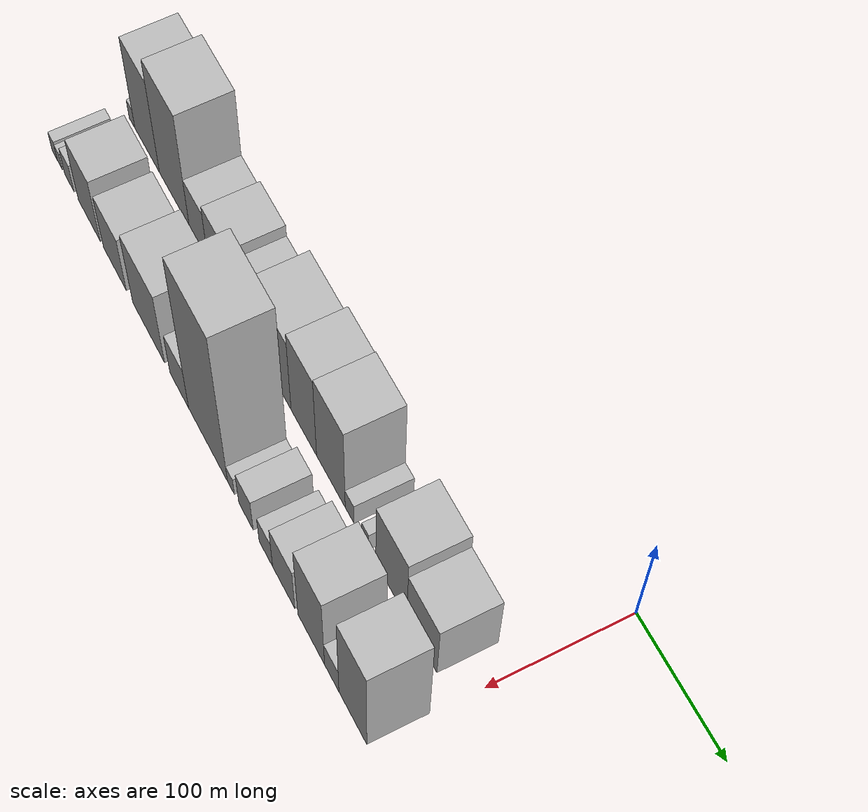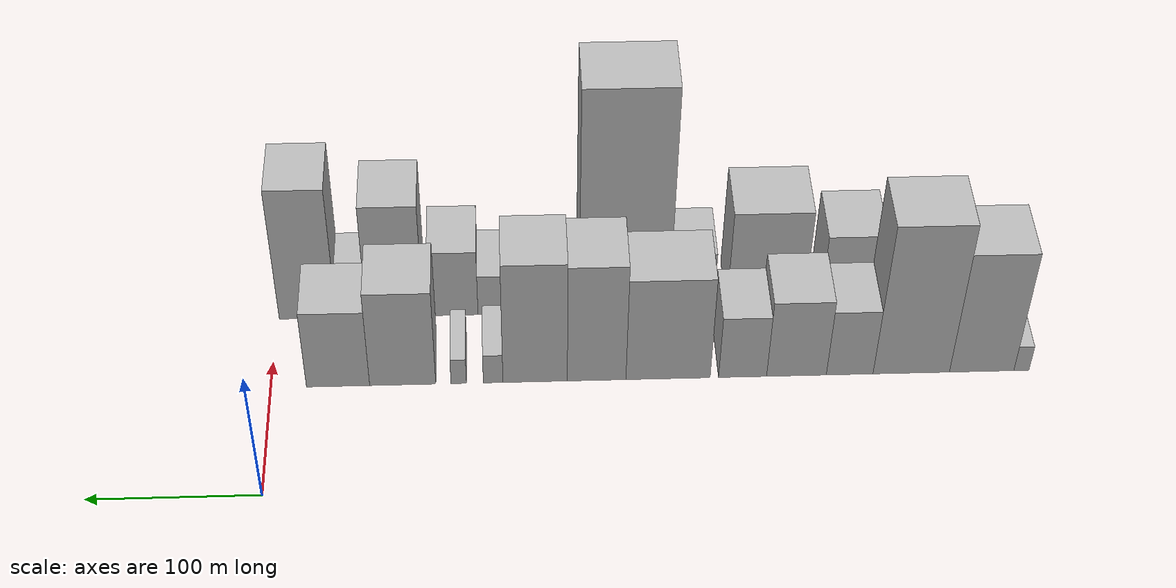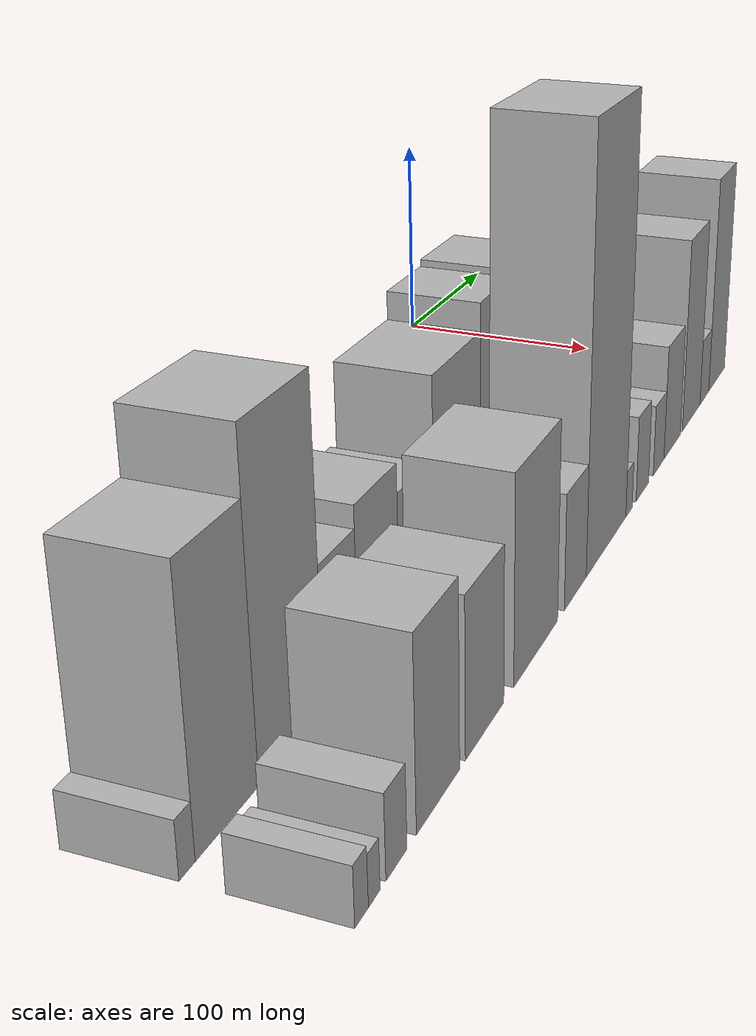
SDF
<sdf version="1.6">
 <world name="default">
  <model name="building_1">
   <static>1</static>
   <pose>100.0000 -445.4748 0 0.000000 0.000000 0.000000</pose>
   <link name="link">
    <pose>0 0 10.50 0 0 0</pose>
    <collision name="collision"><geometry><box><size>40.0000 9.0504 21.0000</size></box></geometry></collision>
    <visual name="visual">
     <cast_shadows>0</cast_shadows>
     <geometry><box><size>40.0000 9.0504 21.0000</size></box></geometry>
     <material>
      <script>
       <uri>model://HANNAS_wall/materials/scripts</uri>
       <uri>model://HANNAS_wall/materials/textures</uri>
       <name>vrc/HANNAS_wall</name>
      </script>
     </material>
    </visual>
   </link>
  </model>
  <model name="building_2">
   <static>1</static>
   <pose>100.0000 -421.6555 0 0.000000 0.000000 0.000000</pose>
   <link name="link">
    <pose>0 0 49.50 0 0 0</pose>
    <collision name="collision"><geometry><box><size>40.0000 38.5883 99.0000</size></box></geometry></collision>
    <visual name="visual">
     <cast_shadows>0</cast_shadows>
     <geometry><box><size>40.0000 38.5883 99.0000</size></box></geometry>
     <material>
      <script>
       <uri>model://HANNAS_wall/materials/scripts</uri>
       <uri>model://HANNAS_wall/materials/textures</uri>
       <name>vrc/HANNAS_wall</name>
      </script>
     </material>
    </visual>
   </link>
  </model>
  <model name="building_3">
   <static>1</static>
   <pose>100.0000 -379.5401 0 0.000000 0.000000 0.000000</pose>
   <link name="link">
    <pose>0 0 61.50 0 0 0</pose>
    <collision name="collision"><geometry><box><size>40.0000 45.6425 123.0000</size></box></geometry></collision>
    <visual name="visual">
     <cast_shadows>0</cast_shadows>
     <geometry><box><size>40.0000 45.6425 123.0000</size></box></geometry>
     <material>
      <script>
       <uri>model://HANNAS_wall/materials/scripts</uri>
       <uri>model://HANNAS_wall/materials/textures</uri>
       <name>vrc/HANNAS_wall</name>
      </script>
     </material>
    </visual>
   </link>
  </model>
  <model name="building_4">
   <static>1</static>
   <pose>100.0000 -342.8014 0 0.000000 0.000000 0.000000</pose>
   <link name="link">
    <pose>0 0 27.00 0 0 0</pose>
    <collision name="collision"><geometry><box><size>40.0000 27.8349 54.0000</size></box></geometry></collision>
    <visual name="visual">
     <cast_shadows>0</cast_shadows>
     <geometry><box><size>40.0000 27.8349 54.0000</size></box></geometry>
     <material>
      <script>
       <uri>model://HANNAS_wall/materials/scripts</uri>
       <uri>model://HANNAS_wall/materials/textures</uri>
       <name>vrc/HANNAS_wall</name>
      </script>
     </material>
    </visual>
   </link>
  </model>
  <model name="building_5">
   <static>1</static>
   <pose>100.0000 -311.0895 0 0.000000 0.000000 0.000000</pose>
   <link name="link">
    <pose>0 0 31.50 0 0 0</pose>
    <collision name="collision"><geometry><box><size>40.0000 35.5888 63.0000</size></box></geometry></collision>
    <visual name="visual">
     <cast_shadows>0</cast_shadows>
     <geometry><box><size>40.0000 35.5888 63.0000</size></box></geometry>
     <material>
      <script>
       <uri>model://HANNAS_wall/materials/scripts</uri>
       <uri>model://HANNAS_wall/materials/textures</uri>
       <name>vrc/HANNAS_wall</name>
      </script>
     </material>
    </visual>
   </link>
  </model>
  <model name="building_6">
   <static>1</static>
   <pose>100.0000 -278.9993 0 0.000000 0.000000 0.000000</pose>
   <link name="link">
    <pose>0 0 25.50 0 0 0</pose>
    <collision name="collision"><geometry><box><size>40.0000 28.5917 51.0000</size></box></geometry></collision>
    <visual name="visual">
     <cast_shadows>0</cast_shadows>
     <geometry><box><size>40.0000 28.5917 51.0000</size></box></geometry>
     <material>
      <script>
       <uri>model://HANNAS_wall/materials/scripts</uri>
       <uri>model://HANNAS_wall/materials/textures</uri>
       <name>vrc/HANNAS_wall</name>
      </script>
     </material>
    </visual>
   </link>
  </model>
  <model name="building_7">
   <static>1</static>
   <pose>100.0000 -234.6841 0 0.000000 0.000000 0.000000</pose>
   <link name="link">
    <pose>0 0 42.00 0 0 0</pose>
    <collision name="collision"><geometry><box><size>40.0000 50.0388 84.0000</size></box></geometry></collision>
    <visual name="visual">
     <cast_shadows>0</cast_shadows>
     <geometry><box><size>40.0000 50.0388 84.0000</size></box></geometry>
     <material>
      <script>
       <uri>model://HANNAS_wall/materials/scripts</uri>
       <uri>model://HANNAS_wall/materials/textures</uri>
       <name>vrc/HANNAS_wall</name>
      </script>
     </material>
    </visual>
   </link>
  </model>
  <model name="building_8">
   <static>1</static>
   <pose>100.0000 -192.2802 0 0.000000 0.000000 0.000000</pose>
   <link name="link">
    <pose>0 0 48.00 0 0 0</pose>
    <collision name="collision"><geometry><box><size>40.0000 34.7690 96.0000</size></box></geometry></collision>
    <visual name="visual">
     <cast_shadows>0</cast_shadows>
     <geometry><box><size>40.0000 34.7690 96.0000</size></box></geometry>
     <material>
      <script>
       <uri>model://HANNAS_wall/materials/scripts</uri>
       <uri>model://HANNAS_wall/materials/textures</uri>
       <name>vrc/HANNAS_wall</name>
      </script>
     </material>
    </visual>
   </link>
  </model>
  <model name="building_9">
   <static>1</static>
   <pose>100.0000 -155.8249 0 0.000000 0.000000 0.000000</pose>
   <link name="link">
    <pose>0 0 49.50 0 0 0</pose>
    <collision name="collision"><geometry><box><size>40.0000 38.1416 99.0000</size></box></geometry></collision>
    <visual name="visual">
     <cast_shadows>0</cast_shadows>
     <geometry><box><size>40.0000 38.1416 99.0000</size></box></geometry>
     <material>
      <script>
       <uri>model://HANNAS_wall/materials/scripts</uri>
       <uri>model://HANNAS_wall/materials/textures</uri>
       <name>vrc/HANNAS_wall</name>
      </script>
     </material>
    </visual>
   </link>
  </model>
  <model name="building_10">
   <static>1</static>
   <pose>100.0000 -130.9674 0 0.000000 0.000000 0.000000</pose>
   <link name="link">
    <pose>0 0 12.00 0 0 0</pose>
    <collision name="collision"><geometry><box><size>40.0000 11.5733 24.0000</size></box></geometry></collision>
    <visual name="visual">
     <cast_shadows>0</cast_shadows>
     <geometry><box><size>40.0000 11.5733 24.0000</size></box></geometry>
     <material>
      <script>
       <uri>model://HANNAS_wall/materials/scripts</uri>
       <uri>model://HANNAS_wall/materials/textures</uri>
       <name>vrc/HANNAS_wall</name>
      </script>
     </material>
    </visual>
   </link>
  </model>
  <model name="building_11">
   <static>1</static>
   <pose>100.0000 -110.6185 0 0.000000 0.000000 0.000000</pose>
   <link name="link">
    <pose>0 0 10.50 0 0 0</pose>
    <collision name="collision"><geometry><box><size>40.0000 9.1246 21.0000</size></box></geometry></collision>
    <visual name="visual">
     <cast_shadows>0</cast_shadows>
     <geometry><box><size>40.0000 9.1246 21.0000</size></box></geometry>
     <material>
      <script>
       <uri>model://HANNAS_wall/materials/scripts</uri>
       <uri>model://HANNAS_wall/materials/textures</uri>
       <name>vrc/HANNAS_wall</name>
      </script>
     </material>
    </visual>
   </link>
  </model>
  <model name="building_12">
   <static>1</static>
   <pose>100.0000 -77.5080 0 0.000000 0.000000 0.000000</pose>
   <link name="link">
    <pose>0 0 39.00 0 0 0</pose>
    <collision name="collision"><geometry><box><size>40.0000 39.0963 78.0000</size></box></geometry></collision>
    <visual name="visual">
     <cast_shadows>0</cast_shadows>
     <geometry><box><size>40.0000 39.0963 78.0000</size></box></geometry>
     <material>
      <script>
       <uri>model://HANNAS_wall/materials/scripts</uri>
       <uri>model://HANNAS_wall/materials/textures</uri>
       <name>vrc/HANNAS_wall</name>
      </script>
     </material>
    </visual>
   </link>
  </model>
  <model name="building_13">
   <static>1</static>
   <pose>100.0000 -39.3229 0 0.000000 0.000000 0.000000</pose>
   <link name="link">
    <pose>0 0 31.50 0 0 0</pose>
    <collision name="collision"><geometry><box><size>40.0000 37.2738 63.0000</size></box></geometry></collision>
    <visual name="visual">
     <cast_shadows>0</cast_shadows>
     <geometry><box><size>40.0000 37.2738 63.0000</size></box></geometry>
     <material>
      <script>
       <uri>model://HANNAS_wall/materials/scripts</uri>
       <uri>model://HANNAS_wall/materials/textures</uri>
       <name>vrc/HANNAS_wall</name>
      </script>
     </material>
    </visual>
   </link>
  </model>
  <model name="building_27">
   <static>1</static>
   <pose>155.0000 -445.5426 0 0.000000 0.000000 0.000000</pose>
   <link name="link">
    <pose>0 0 10.50 0 0 0</pose>
    <collision name="collision"><geometry><box><size>40.0000 8.9148 21.0000</size></box></geometry></collision>
    <visual name="visual">
     <cast_shadows>0</cast_shadows>
     <geometry><box><size>40.0000 8.9148 21.0000</size></box></geometry>
     <material>
      <script>
       <uri>model://HANNAS_wall/materials/scripts</uri>
       <uri>model://HANNAS_wall/materials/textures</uri>
       <name>vrc/HANNAS_wall</name>
      </script>
     </material>
    </visual>
   </link>
  </model>
  <model name="building_28">
   <static>1</static>
   <pose>155.0000 -437.1191 0 0.000000 0.000000 0.000000</pose>
   <link name="link">
    <pose>0 0 9.00 0 0 0</pose>
    <collision name="collision"><geometry><box><size>40.0000 7.9323 18.0000</size></box></geometry></collision>
    <visual name="visual">
     <cast_shadows>0</cast_shadows>
     <geometry><box><size>40.0000 7.9323 18.0000</size></box></geometry>
     <material>
      <script>
       <uri>model://HANNAS_wall/materials/scripts</uri>
       <uri>model://HANNAS_wall/materials/textures</uri>
       <name>vrc/HANNAS_wall</name>
      </script>
     </material>
    </visual>
   </link>
  </model>
  <model name="building_29">
   <static>1</static>
   <pose>155.0000 -421.6066 0 0.000000 0.000000 0.000000</pose>
   <link name="link">
    <pose>0 0 15.00 0 0 0</pose>
    <collision name="collision"><geometry><box><size>40.0000 15.0926 30.0000</size></box></geometry></collision>
    <visual name="visual">
     <cast_shadows>0</cast_shadows>
     <geometry><box><size>40.0000 15.0926 30.0000</size></box></geometry>
     <material>
      <script>
       <uri>model://HANNAS_wall/materials/scripts</uri>
       <uri>model://HANNAS_wall/materials/textures</uri>
       <name>vrc/HANNAS_wall</name>
      </script>
     </material>
    </visual>
   </link>
  </model>
  <model name="building_30">
   <static>1</static>
   <pose>155.0000 -389.6466 0 0.000000 0.000000 0.000000</pose>
   <link name="link">
    <pose>0 0 34.50 0 0 0</pose>
    <collision name="collision"><geometry><box><size>40.0000 34.8274 69.0000</size></box></geometry></collision>
    <visual name="visual">
     <cast_shadows>0</cast_shadows>
     <geometry><box><size>40.0000 34.8274 69.0000</size></box></geometry>
     <material>
      <script>
       <uri>model://HANNAS_wall/materials/scripts</uri>
       <uri>model://HANNAS_wall/materials/textures</uri>
       <name>vrc/HANNAS_wall</name>
      </script>
     </material>
    </visual>
   </link>
  </model>
  <model name="building_31">
   <static>1</static>
   <pose>155.0000 -349.5543 0 0.000000 0.000000 0.000000</pose>
   <link name="link">
    <pose>0 0 30.00 0 0 0</pose>
    <collision name="collision"><geometry><box><size>40.0000 35.3572 60.0000</size></box></geometry></collision>
    <visual name="visual">
     <cast_shadows>0</cast_shadows>
     <geometry><box><size>40.0000 35.3572 60.0000</size></box></geometry>
     <material>
      <script>
       <uri>model://HANNAS_wall/materials/scripts</uri>
       <uri>model://HANNAS_wall/materials/textures</uri>
       <name>vrc/HANNAS_wall</name>
      </script>
     </material>
    </visual>
   </link>
  </model>
  <model name="building_32">
   <static>1</static>
   <pose>155.0000 -298.1085 0 0.000000 0.000000 0.000000</pose>
   <link name="link">
    <pose>0 0 40.50 0 0 0</pose>
    <collision name="collision"><geometry><box><size>40.0000 47.5344 81.0000</size></box></geometry></collision>
    <visual name="visual">
     <cast_shadows>0</cast_shadows>
     <geometry><box><size>40.0000 47.5344 81.0000</size></box></geometry>
     <material>
      <script>
       <uri>model://HANNAS_wall/materials/scripts</uri>
       <uri>model://HANNAS_wall/materials/textures</uri>
       <name>vrc/HANNAS_wall</name>
      </script>
     </material>
    </visual>
   </link>
  </model>
  <model name="building_33">
   <static>1</static>
   <pose>155.0000 -252.7538 0 0.000000 0.000000 0.000000</pose>
   <link name="link">
    <pose>0 0 24.00 0 0 0</pose>
    <collision name="collision"><geometry><box><size>40.0000 27.1748 48.0000</size></box></geometry></collision>
    <visual name="visual">
     <cast_shadows>0</cast_shadows>
     <geometry><box><size>40.0000 27.1748 48.0000</size></box></geometry>
     <material>
      <script>
       <uri>model://HANNAS_wall/materials/scripts</uri>
       <uri>model://HANNAS_wall/materials/textures</uri>
       <name>vrc/HANNAS_wall</name>
      </script>
     </material>
    </visual>
   </link>
  </model>
  <model name="building_34">
   <static>1</static>
   <pose>155.0000 -211.5533 0 0.000000 0.000000 0.000000</pose>
   <link name="link">
    <pose>0 0 90.00 0 0 0</pose>
    <collision name="collision"><geometry><box><size>40.0000 55.2262 180.0000</size></box></geometry></collision>
    <visual name="visual">
     <cast_shadows>0</cast_shadows>
     <geometry><box><size>40.0000 55.2262 180.0000</size></box></geometry>
     <material>
      <script>
       <uri>model://HANNAS_wall/materials/scripts</uri>
       <uri>model://HANNAS_wall/materials/textures</uri>
       <name>vrc/HANNAS_wall</name>
      </script>
     </material>
    </visual>
   </link>
  </model>
  <model name="building_35">
   <static>1</static>
   <pose>155.0000 -179.1649 0 0.000000 0.000000 0.000000</pose>
   <link name="link">
    <pose>0 0 10.50 0 0 0</pose>
    <collision name="collision"><geometry><box><size>40.0000 9.5507 21.0000</size></box></geometry></collision>
    <visual name="visual">
     <cast_shadows>0</cast_shadows>
     <geometry><box><size>40.0000 9.5507 21.0000</size></box></geometry>
     <material>
      <script>
       <uri>model://HANNAS_wall/materials/scripts</uri>
       <uri>model://HANNAS_wall/materials/textures</uri>
       <name>vrc/HANNAS_wall</name>
      </script>
     </material>
    </visual>
   </link>
  </model>
  <model name="building_36">
   <static>1</static>
   <pose>155.0000 -158.4771 0 0.000000 0.000000 0.000000</pose>
   <link name="link">
    <pose>0 0 19.50 0 0 0</pose>
    <collision name="collision"><geometry><box><size>40.0000 19.8249 39.0000</size></box></geometry></collision>
    <visual name="visual">
     <cast_shadows>0</cast_shadows>
     <geometry><box><size>40.0000 19.8249 39.0000</size></box></geometry>
     <material>
      <script>
       <uri>model://HANNAS_wall/materials/scripts</uri>
       <uri>model://HANNAS_wall/materials/textures</uri>
       <name>vrc/HANNAS_wall</name>
      </script>
     </material>
    </visual>
   </link>
  </model>
  <model name="building_37">
   <static>1</static>
   <pose>155.0000 -131.4436 0 0.000000 0.000000 0.000000</pose>
   <link name="link">
    <pose>0 0 16.50 0 0 0</pose>
    <collision name="collision"><geometry><box><size>40.0000 18.2419 33.0000</size></box></geometry></collision>
    <visual name="visual">
     <cast_shadows>0</cast_shadows>
     <geometry><box><size>40.0000 18.2419 33.0000</size></box></geometry>
     <material>
      <script>
       <uri>model://HANNAS_wall/materials/scripts</uri>
       <uri>model://HANNAS_wall/materials/textures</uri>
       <name>vrc/HANNAS_wall</name>
      </script>
     </material>
    </visual>
   </link>
  </model>
  <model name="building_38">
   <static>1</static>
   <pose>155.0000 -107.6092 0 0.000000 0.000000 0.000000</pose>
   <link name="link">
    <pose>0 0 27.00 0 0 0</pose>
    <collision name="collision"><geometry><box><size>40.0000 29.4269 54.0000</size></box></geometry></collision>
    <visual name="visual">
     <cast_shadows>0</cast_shadows>
     <geometry><box><size>40.0000 29.4269 54.0000</size></box></geometry>
     <material>
      <script>
       <uri>model://HANNAS_wall/materials/scripts</uri>
       <uri>model://HANNAS_wall/materials/textures</uri>
       <name>vrc/HANNAS_wall</name>
      </script>
     </material>
    </visual>
   </link>
  </model>
  <model name="building_39">
   <static>1</static>
   <pose>155.0000 -71.6360 0 0.000000 0.000000 0.000000</pose>
   <link name="link">
    <pose>0 0 46.50 0 0 0</pose>
    <collision name="collision"><geometry><box><size>40.0000 34.5195 93.0000</size></box></geometry></collision>
    <visual name="visual">
     <cast_shadows>0</cast_shadows>
     <geometry><box><size>40.0000 34.5195 93.0000</size></box></geometry>
     <material>
      <script>
       <uri>model://HANNAS_wall/materials/scripts</uri>
       <uri>model://HANNAS_wall/materials/textures</uri>
       <name>vrc/HANNAS_wall</name>
      </script>
     </material>
    </visual>
   </link>
  </model>
  <model name="building_40">
   <static>1</static>
   <pose>155.0000 -45.2618 0 0.000000 0.000000 0.000000</pose>
   <link name="link">
    <pose>0 0 16.50 0 0 0</pose>
    <collision name="collision"><geometry><box><size>40.0000 18.2290 33.0000</size></box></geometry></collision>
    <visual name="visual">
     <cast_shadows>0</cast_shadows>
     <geometry><box><size>40.0000 18.2290 33.0000</size></box></geometry>
     <material>
      <script>
       <uri>model://HANNAS_wall/materials/scripts</uri>
       <uri>model://HANNAS_wall/materials/textures</uri>
       <name>vrc/HANNAS_wall</name>
      </script>
     </material>
    </visual>
   </link>
  </model>
  <model name="building_41">
   <static>1</static>
   <pose>155.0000 -18.7393 0 0.000000 0.000000 0.000000</pose>
   <link name="link">
    <pose>0 0 54.00 0 0 0</pose>
    <collision name="collision"><geometry><box><size>40.0000 34.8160 108.0000</size></box></geometry></collision>
    <visual name="visual">
     <cast_shadows>0</cast_shadows>
     <geometry><box><size>40.0000 34.8160 108.0000</size></box></geometry>
     <material>
      <script>
       <uri>model://HANNAS_wall/materials/scripts</uri>
       <uri>model://HANNAS_wall/materials/textures</uri>
       <name>vrc/HANNAS_wall</name>
      </script>
     </material>
    </visual>
   </link>
  </model>
 </world>
</sdf>
